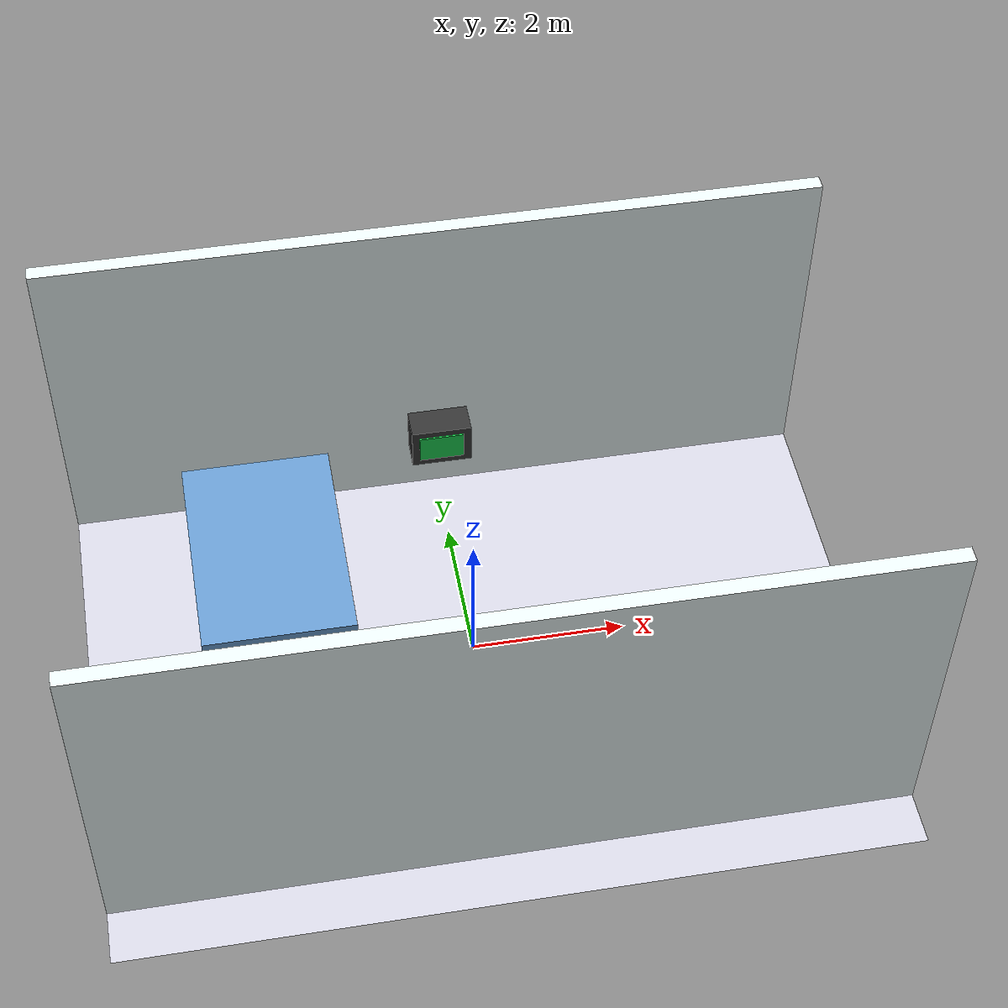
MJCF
<mujoco model="hackathon_icu">
  <statistic center="0 0 1" extent="4"/>

  <visual>
    <headlight diffuse="0.8 0.8 0.8" ambient="0.4 0.4 0.4" specular="0.1 0.1 0.1"/>
    <rgba haze="0.15 0.25 0.35 1"/>
    <global azimuth="120" elevation="-20"/>
  </visual>

  <asset>
    <texture type="skybox" builtin="gradient" rgb1="0.9 0.9 0.9" rgb2="0.7 0.7 0.7" width="512" height="3072"/>
    <texture type="2d" name="groundplane" builtin="checker" mark="edge" rgb1="0.85 0.85 0.9" rgb2="0.8 0.8 0.85" markrgb="0.7 0.7 0.7" width="300" height="300"/>
    <material name="groundplane" texture="groundplane" texuniform="true" texrepeat="5 5" reflectance="0.05"/>
  </asset>

  <worldbody>
    <light pos="0 0 3" dir="0 0 -1" directional="true"/>
    <geom name="floor" size="5 5 0.05" type="plane" material="groundplane"/>

    <!-- add  wall1  -->
    <body name="wall1" pos="0 3.1 2.3">
      <geom type="box" size="5 0.1 2.3" rgba="0.9 0.95 0.95 1"/>
    </body>

    <!-- add  wall2  -->
    <body name="wall2" pos="0 -3.1 2.3">
      <geom type="box" size="5 0.1 2.3" rgba="0.9 0.95 0.95 1"/>
    </body>

    <!-- add  bed  -->
    <body name="bed" pos="-2.5 1.5 0.4">
      <geom type="box" size="1 1.5 0.4" rgba="0.4 0.6 0.8 1"/>
    </body>

    <!-- add  ecg  -->
    <body name="vitals_monitor" pos="0 2.7 1.2">
      <geom type="box" size="0.4 0.2 0.3" rgba="0.2 0.2 0.2 1"/>
      <geom type="box" size="0.3 0.21 0.2" pos="0 -0.01 0" rgba="0.1 0.8 0.3 1"/>
    </body>

    <body name="camera_mount" pos="0 -2.7 2.5">
      <joint name="camera_pan" type="hinge" axis="0 0 1" range="-90 90" limited="true" damping="0.5"/>
      <geom type="cylinder" size="0.1 0.05" rgba="0.5 0.3 0.3 1"/>

      <body name="camera_head" pos="0 0.1 0">
        <joint name="camera_tilt" type="hinge" axis="1 0 0" range="-45 45" limited="true" damping="0.5"/>
        <geom type="box" size="0.08 0.1 0.08" rgba="0.1 0.1 0.1 1"/>
        <camera name="robot_camera" pos="0 0.1 0" euler="60 0 0"/>
      </body>
    </body>

  </worldbody>

  <actuator>
    <position name="pan_motor" joint="camera_pan" ctrlrange="-1.57 1.57" kp="10"/>
    <position name="tilt_motor" joint="camera_tilt" ctrlrange="-0.78 0.78" kp="10"/>
  </actuator>

</mujoco>
